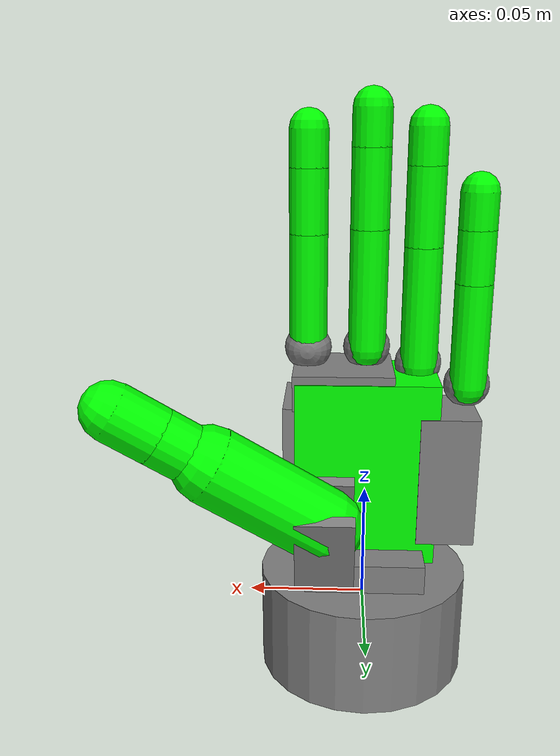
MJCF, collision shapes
<mujoco model="svh">
  <compiler angle="radian" meshdir="assets/" />

  <default>
    <!-- disable all contacts and use explicit collision pairs -->
    <geom density="800" condim="1" contype="0" conaffinity="0" />
    <!-- with this setting, the response time is around 1s -->
    <position kp="300" dampratio="1.0" inheritrange="1" />
    <joint damping="0.0" armature="1.0" frictionloss="0.0" />
    <site size="0.005" type="sphere" rgba="1 0 0 1" group="3" />
  </default>

  <asset>
    <texture type="skybox" builtin="gradient" rgb1="0.3 0.5 0.7" rgb2="0 0 0" width="512"
      height="3072" />
    <texture type="2d" name="left_groundplane" builtin="checker" mark="edge" rgb1="0.2 0.3 0.4"
      rgb2="0.1 0.2 0.3" markrgb="0.8 0.8 0.8" width="300" height="300" />
    <material name="left_groundplane" texture="left_groundplane" texuniform="true" texrepeat="5 5"
      reflectance="0.2" />

    <mesh name="left_d11" file="d11_left.obj" />
    <mesh name="left_d12" file="d12_left.obj" />
    <mesh name="left_d13" file="d13_left.obj" />
    <mesh name="left_f11" file="f11.obj" />
    <mesh name="left_f12" file="f12.obj" />
    <mesh name="left_finger_tip" file="finger_tip.obj" />
    <mesh name="left_f21" file="f21.obj" />
    <mesh name="left_f22_f32" file="f22_f32.obj" />
    <mesh name="left_f31" file="f31.obj" />
    <mesh name="left_f41" file="f41.obj" />
    <mesh name="left_f42" file="f42.obj" />
  </asset>

  <worldbody>
    <body name="left_pos_x_link">
      <camera name="left_track" pos="0.868 -0.348 -0.175"
        xyaxes="0.037 0.999 -0.000 0.011 -0.000 1.000" />
      <inertial pos="0 0 0" mass="0.01" diaginertia="0.01 0.01 0.01" />
      <joint name="left_pos_x" pos="0 0 0" axis="1 0 0" type="slide" range="-5 5" />
      <body name="left_pos_y_link">
        <inertial pos="0 0 0" mass="0.01" diaginertia="0.01 0.01 0.01" />
        <joint name="left_pos_y" pos="0 0 0" axis="0 1 0" type="slide" range="-5 5" />
        <body name="left_pos_z_link">
          <inertial pos="0 0 0" mass="0.01" diaginertia="0.01 0.01 0.01" />
          <joint name="left_pos_z" pos="0 0 0" axis="0 0 1" type="slide" range="-5 5" />
          <body name="left_rot_z_link">
            <inertial pos="0 0 0" mass="0.01" diaginertia="0.01 0.01 0.01" />
            <joint name="left_rot_z" pos="0 0 0" axis="0 0 1" range="-6.2 6.2" />
            <body name="left_rot_x_link">
              <inertial pos="0 0 0" mass="0.01" diaginertia="0.01 0.01 0.01" />
              <joint name="left_rot_x" pos="0 0 0" axis="1 0 0" range="-6.2 6.2" />
              <body name="left_hand_link">
                <inertial pos="-6.48554e-05 -0.00451484 0.127324"
                  quat="0.496466 0.503155 -0.508367 0.491853" mass="0.6112"
                  diaginertia="0.0865419 0.0593417 0.0588699" />
                <joint name="left_rot_y" pos="0 0 0" axis="0 1 0" range="-6.2 6.2" />

                <!-- Palm visuals -->
                <geom size="0.045 0.0225" pos="0 0 -0.009" type="cylinder" />
                <geom size="0.025 0.025 0.013" pos="0 0 0.013" type="box" />
                <geom size="0.0292 0.019 0.03205" pos="0.00573 -0.00963 0.05747" type="box" />
                <geom size="0.021 0.019 0.0075" pos="0.01 -0.00963 0.096" type="box" />
                <geom size="0.01" pos="-3.09209e-07 -0.01634 0.11" quat="0.500048 0.499952 -0.5 0.5" />

                <!-- Collision: palm -->
                <geom name="collision_hand_left_palm_0" type="box" size="0.03 0.02 0.04"
                  pos="0 -0.01 0.06" rgba="0 1 0 1" group="3" />
                <site name="left_palm" pos="0 0 0" type="box" size="0.01 0.02 0.03" quat="1 0 0 1" />

                <!-- Thumb -->
                <body name="left_hand_thumb_opp" pos="0.0169 0.01313 0"
                  quat="0.700986 -0.0923056 0.0922868 0.701129">
                  <inertial pos="0 0.002024 0.178636" quat="0.481281 0.518043 0.481281 0.518043"
                    mass="0.0739" diaginertia="0.00165295 0.00110705 0.00103" />
                  <joint name="left_hand_Thumb_Opposition" pos="0 0 0" axis="0 0 1" range="0 0.9879" />
                  <geom size="0.012 0.0094 0.004" pos="0 0 0.02842" type="box" />
                  <geom size="0.003 0.012 0.0165" pos="0.0125 0 0.04292" type="box" />
                  <geom size="0.003 0.012 0.0165" pos="-0.0125 0 0.04292" type="box" />
                  <body name="left_hand_thumb_proximal" pos="0 0 0.04596"
                    quat="0.329787 -0.625494 0.329779 -0.625494">
                    <inertial pos="0.240205 0.010733 0.00019"
                      quat="0.0202941 0.706815 -0.0202941 0.706815" mass="0.41222"
                      diaginertia="0.01796 0.016832 0.00408805" />
                    <joint name="left_hand_Thumb_Flexion" pos="0 0 0" axis="0 0 1" range="-0.9704 0" />
                    <geom type="mesh" mesh="left_d11" />
                    <geom name="collision_hand_left_thumb_2" type="capsule" size="0.016"
                      fromto="0 0 0 0.055 0 0" rgba="0 1 0 1" group="3" />
                    <body name="left_hand_thumb_intermediate" pos="0.0485 0 0">
                      <inertial pos="0.123157 -0.008382 -2.7e-05"
                        quat="0.524056 0.524056 0.474727 0.474727" mass="0.08224"
                        diaginertia="0.00139495 0.00103 0.000885049" />
                      <joint name="left_hand_j3" pos="0 0 0" axis="0 0 1" range="-0.98506 0" />
                      <geom type="mesh" mesh="left_d12" />
                      <geom name="collision_hand_left_thumb_1" type="capsule" size="0.012"
                        fromto="0 0 0 0.03 0 0" rgba="0 1 0 1" group="3" />
                      <body name="left_hand_thumb_distal" pos="0.03 0 0">
                        <inertial pos="0.007 0 0" quat="0.5 0.5 0.5 0.5" mass="0.02"
                          diaginertia="2e-05 2e-05 1e-05" />
                        <joint name="left_hand_j4" pos="0 0 0" axis="0 0 1" range="-1.406 0" />
                        <geom type="mesh" mesh="left_d13" />
                        <geom name="collision_hand_left_thumb_0" type="capsule" size="0.012"
                          fromto="0 0 0 0.02 0 0" rgba="0 1 0 1" group="3" />
                        <site name="left_thumb_tip" pos="0.02 -0.007 0" />
                        <site name="track_hand_left_thumb_tip" pos="0.02 -0.007 0" />
                        <site name="trace_hand_left_thumb_tip" pos="0.02 -0.007 0" />
                      </body>
                    </body>
                  </body>
                </body>

                <!-- Ring and Pinky base block -->
                <body name="left_hand_block" pos="-0.0184 -0.00713 0.0375">
                  <inertial pos="0.145071 -0.037868 0.323449"
                    quat="0.951685 0.143658 0.0293436 -0.26981" mass="0.46184"
                    diaginertia="0.019814 0.0171408 0.00778522" />
                  <joint name="left_hand_block_joint" pos="0 0 0" axis="0 0 1" range="-0.98786 0" />
                  <geom size="0.0123 0.0175 0.0282" pos="-0.016 0 0.02" type="box" />
                  <geom size="0.006 0.009 0.0105" pos="-0.0032 -0.0083 0.048" type="box" />
                  <body name="left_hand_ring_spread_link" pos="-0.003855 -0.006 0.0655"
                    quat="0.500048 -0.5 -0.5 -0.499952">
                    <inertial pos="0.003805 0.000386 0.100079"
                      quat="0.69352 0.69352 -0.13795 0.13795" mass="0.02377"
                      diaginertia="0.000214142 0.000185858 0.00011" />
                    <joint name="left_hand_ring_spread" pos="0 0 0" axis="0 0 1" range="-0.28833 0" />
                    <geom size="0.01" pos="0 0 -0.00321" />
                    <body name="left_hand_ring_proximal" quat="0.707141 0.707073 0 0">
                      <inertial pos="0.258283 -0.00154 0"
                        quat="0.0178138 0.706882 -0.0178138 0.706882" mass="0.1377"
                        diaginertia="0.00426 0.00411908 0.000540922" />
                      <joint name="left_hand_Ring_Finger" pos="0 0 0" axis="0 0 1" range="0 0.98175" />
                      <geom type="mesh" mesh="left_f31" />
                      <geom name="collision_hand_left_ring_2" type="capsule" size="0.008"
                        fromto="0 0 0 0.05004 0 0" rgba="0 1 0 1" group="3" />
                      <body name="left_hand_ring_intermediate" pos="0.05004 0 0">
                        <inertial pos="0.166851 -0.00362 0" quat="0.5 0.5 0.5 0.5" mass="0.04207"
                          diaginertia="0.00047 0.0004 0.00019" />
                        <joint name="left_hand_j12" pos="0 0 0" axis="0 0 1" range="0 1.334" />
                        <geom type="mesh" mesh="left_f22_f32" />
                        <geom name="collision_hand_left_ring_1" type="capsule" size="0.008"
                          fromto="0 0 0 0.032 0 0" rgba="0 1 0 1" group="3" />
                        <body name="left_hand_ring_distal" pos="0.032 0 0">
                          <inertial pos="0.007 0 0" quat="0.5 0.5 0.5 0.5" mass="0.02"
                            diaginertia="2e-05 2e-05 1e-05" />
                          <joint name="left_hand_j16" pos="0 0 0" axis="0 0 1" range="0 1.395" />
                          <geom type="mesh" mesh="left_finger_tip" />
                          <geom name="collision_hand_left_ring_0" type="capsule" size="0.008"
                            rgba="0 1 0 1" group="3" fromto="0 0 0 0.015 0 0.00" />
                          <site name="left_ring_tip" pos="0.01 0.007 0.00" />
                          <site name="track_hand_left_ring_tip" pos="0.01 0.007 0.00" />
                          <site name="trace_hand_left_ring_tip" pos="0.01 0.007 0.00" />
                        </body>
                      </body>
                    </body>
                  </body>
                  <body name="left_hand_finger_spread_link" pos="-0.025355 -0.006 0.056"
                    quat="0.500048 -0.5 -0.5 -0.499952">
                    <inertial pos="0.003653 4.4e-05 0.100085"
                      quat="0.69352 0.69352 -0.13795 0.13795" mass="0.02377"
                      diaginertia="0.000214142 0.000185858 0.00011" />
                    <joint name="left_hand_Finger_Spread" pos="0 0 0" axis="0 0 1" range="-0.5829 0" />
                    <geom size="0.01" pos="0 0 -0.00321" />
                    <body name="left_hand_pinky_proximal" quat="0.707141 0.707073 0 0">
                      <inertial pos="0.232293 0.00622 0"
                        quat="0.00793951 0.707062 -0.00793951 0.707062" mass="0.12544"
                        diaginertia="0.00328 0.00316135 0.000488652" />
                      <joint name="left_hand_Pinky" pos="0 0 0" axis="0 0 1" range="0 0.98175" />
                      <geom type="mesh" mesh="left_f41" />
                      <geom name="collision_hand_left_pinky_2" type="capsule" size="0.008"
                        fromto="0 0 0 0.04454 0 0" rgba="0 1 0 1" group="3" />
                      <body name="left_hand_pinky_intermediate" pos="0.04454 0 0">
                        <inertial pos="0.007 0 0" quat="0.5 0.5 0.5 0.5" mass="0.02"
                          diaginertia="2e-06 2e-06 8e-07" />
                        <joint name="left_hand_j13" pos="0 0 0" axis="0 0 1" range="0 1.334" />
                        <geom type="mesh" mesh="left_f42" />
                        <geom name="collision_hand_left_pinky_1" type="capsule" size="0.008"
                          fromto="0 0 0 0.022 0 0" rgba="0 1 0 1" group="3" />
                        <body name="left_hand_pinky_distal" pos="0.022 0 0">
                          <inertial pos="0.007 0 0" quat="0.5 0.5 0.5 0.5" mass="0.02"
                            diaginertia="2e-05 2e-05 1e-05" />
                          <joint name="left_hand_j17" pos="0 0 0" axis="0 0 1" range="0 1.3971" />
                          <geom type="mesh" mesh="left_finger_tip" />
                          <geom name="collision_hand_left_pinky_0" type="capsule" size="0.008"
                            rgba="0 1 0 1" group="3" fromto="0 0 0 0.015 0 0.00" />
                          <site name="left_pinky_tip" pos="0.01 0.007 0.00" />
                          <site name="track_hand_left_pinky_tip" pos="0.01 0.007 0.00" />
                          <site name="trace_hand_left_pinky_tip" pos="0.01 0.007 0.00" />
                        </body>
                      </body>
                    </body>
                  </body>
                </body>

                <!-- Index finger -->
                <body name="left_hand_index_spread_link" pos="0.025 -0.01313 0.11"
                  quat="0.500048 0.499952 -0.5 0.5">
                  <inertial pos="0.003634 0.000206 -0.09885" quat="0.69352 0.69352 0.13795 -0.13795"
                    mass="0.02383" diaginertia="0.000214142 0.000185858 0.00011" />
                  <joint name="left_hand_index_spread" pos="0 0 0" axis="0 0 1" range="-0.28833 0" />
                  <geom size="0.01" pos="0 0 0.00121" />
                  <body name="left_hand_index_proximal" quat="0.707141 -0.707073 0 0">
                    <inertial pos="0.261673 0.003521 0"
                      quat="-0.00373415 0.707097 0.00373415 0.707097" mass="0.13003"
                      diaginertia="0.00344 0.00335032 0.000509683" />
                    <joint name="left_hand_Index_Finger_Proximal" pos="0 0 0" axis="0 0 1"
                      range="0 0.79849" />
                    <geom type="mesh" mesh="left_f11" />
                    <geom name="collision_hand_left_index_2" type="capsule" size="0.008"
                      fromto="0 0 0 0.04804 0 0" rgba="0 1 0 1" group="3" />
                    <body name="left_hand_index_intermediate" pos="0.04804 0 0">
                      <inertial pos="0.01 0 0" quat="0.5 0.5 0.5 0.5" mass="0.024"
                        diaginertia="1.96667e-06 1.96667e-06 1.96667e-06" />
                      <joint name="left_hand_Index_Finger_Distal" pos="0 0 0" axis="0 0 1"
                        range="0 1.334" />
                      <geom type="mesh" mesh="left_f12" />
                      <geom name="collision_hand_left_index_1" type="capsule" size="0.008"
                        fromto="0 0 0 0.026 0 0" rgba="0 1 0 1" group="3" />
                      <body name="left_hand_index_distal" pos="0.026 0 0">
                        <inertial pos="0.007 0 0" quat="0.5 0.5 0.5 0.5" mass="0.02"
                          diaginertia="2e-05 2e-05 1e-05" />
                        <joint name="left_hand_j14" pos="0 0 0" axis="0 0 1" range="0 1.394" />
                        <geom type="mesh" mesh="left_finger_tip" />
                        <geom name="collision_hand_left_index_0" type="capsule" size="0.008"
                          rgba="0 1 0 1" group="3" fromto="0 0 0 0.015 0 0.00" />
                        <site name="left_index_tip" pos="0.01 0.007 0.00" />
                        <site name="track_hand_left_index_tip" pos="0.01 0.007 0.00" />
                        <site name="trace_hand_left_index_tip" pos="0.01 0.007 0.00" />
                      </body>
                    </body>
                  </body>
                </body>

                <!-- Middle finger -->
                <body name="left_hand_middle_proximal" pos="0 -0.01313 0.11"
                  quat="0.707107 -3.40567e-05 -0.707107 3.40567e-05">
                  <inertial pos="0.271122 0.00413 0" quat="-0.003335 0.707099 0.003335 0.707099"
                    mass="0.13474" diaginertia="0.0038 0.00370028 0.000519717" />
                  <joint name="left_hand_Middle_Finger_Proximal" pos="0 0 0" axis="0 0 1"
                    range="0 0.79849" />
                  <geom type="mesh" mesh="left_f21" />
                  <geom name="collision_hand_left_middle_2" type="capsule" size="0.008"
                    fromto="0 0 0 0.05004 0 0" rgba="0 1 0 1" group="3" />
                  <body name="left_hand_middle_intermediate" pos="0.05004 0 0">
                    <inertial pos="0.16683 -0.003774 0" quat="0.5 0.5 0.5 0.5" mass="0.0422"
                      diaginertia="0.00047 0.0004 0.0002" />
                    <joint name="left_hand_Middle_Finger_Distal" pos="0 0 0" axis="0 0 1"
                      range="0 1.334" />
                    <geom type="mesh" mesh="left_f22_f32" />
                    <geom name="collision_hand_left_middle_1" type="capsule" size="0.008"
                      fromto="0 0 0 0.032 0 0" rgba="0 1 0 1" group="3" />
                    <body name="left_hand_middle_distal" pos="0.032 0 0">
                      <inertial pos="0.007 0 0" quat="0.5 0.5 0.5 0.5" mass="0.02"
                        diaginertia="2e-05 2e-05 1e-05" />
                      <joint name="left_hand_j15" pos="0 0 0" axis="0 0 1" range="0 1.334" />
                      <geom type="mesh" mesh="left_finger_tip" />
                      <geom name="collision_hand_left_middle_0" type="capsule" size="0.008"
                        rgba="0 1 0 1" group="3" fromto="0 0 0 0.015 0 0.00" />
                      <site name="left_middle_tip" pos="0.01 0.007 0.00" />
                      <site name="track_hand_left_middle_tip" pos="0.01 0.007 0.00" />
                      <site name="trace_hand_left_middle_tip" pos="0.01 0.007 0.00" />
                    </body>
                  </body>
                </body>
              </body>
            </body>
          </body>
        </body>
      </body>
    </body>
  </worldbody>

  <actuator>
    <!-- Global position and rotation joints -->
    <position name="left_pos_x_position" joint="left_pos_x" kp="1000" />
    <position name="left_pos_y_position" joint="left_pos_y" kp="1000" />
    <position name="left_pos_z_position" joint="left_pos_z" kp="1000" />
    <position name="left_rot_z_position" joint="left_rot_z" kp="1000" />
    <position name="left_rot_x_position" joint="left_rot_x" kp="1000" />
    <position name="left_rot_y_position" joint="left_rot_y" kp="1000" />

    <!-- Thumb joints -->
    <position name="left_thumb_opposition_position" joint="left_hand_Thumb_Opposition" />
    <position name="left_thumb_flexion_position" joint="left_hand_Thumb_Flexion" />
    <position name="left_thumb_intermediate_position" joint="left_hand_j3" />
    <position name="left_thumb_distal_position" joint="left_hand_j4" />
    <position name="left_block_position" joint="left_hand_block_joint" />

    <!-- Ring joints -->
    <position name="left_ring_spread_position" joint="left_hand_ring_spread" />
    <position name="left_ring_proximal_position" joint="left_hand_Ring_Finger" />
    <position name="left_ring_intermediate_position" joint="left_hand_j12" />
    <position name="left_ring_distal_position" joint="left_hand_j16" />

    <!-- Pinky joints -->
    <position name="left_finger_spread_position" joint="left_hand_Finger_Spread" />
    <position name="left_pinky_proximal_position" joint="left_hand_Pinky" />
    <position name="left_pinky_intermediate_position" joint="left_hand_j13" />
    <position name="left_pinky_distal_position" joint="left_hand_j17" />

    <!-- Index joints -->
    <position name="left_index_spread_position" joint="left_hand_index_spread" />
    <position name="left_index_proximal_position" joint="left_hand_Index_Finger_Proximal" />
    <position name="left_index_intermediate_position" joint="left_hand_Index_Finger_Distal" />
    <position name="left_index_distal_position" joint="left_hand_j14" />

    <!-- Middle joints -->
    <position name="left_middle_proximal_position" joint="left_hand_Middle_Finger_Proximal" />
    <position name="left_middle_intermediate_position" joint="left_hand_Middle_Finger_Distal" />
    <position name="left_middle_distal_position" joint="left_hand_j15" />

  </actuator>
</mujoco>
